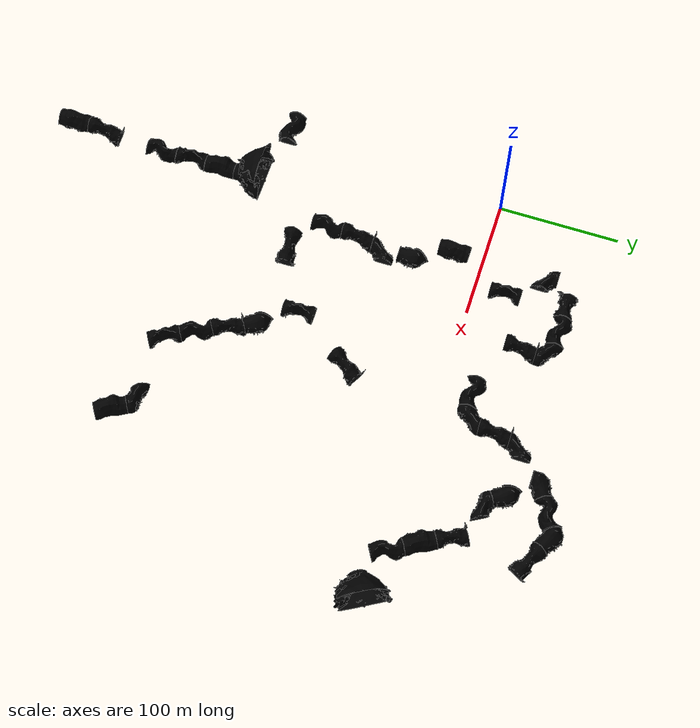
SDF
<sdf version="1.6">
 <world name="cave_qual">
  <physics name="1ms" type="ode">
   <max_step_size>0.001</max_step_size>
   <real_time_factor>1.0</real_time_factor>
  </physics>
  <scene>
   <ambient>0.1 0.1 0.1 1.0</ambient>
   <background>0 0 0 1.0</background>
   <grid>false</grid>
   <origin_visual>false</origin_visual>
  </scene>
  <atmosphere type="adiabatic">
   <temperature>288</temperature>
   <temperature_gradient>0.3</temperature_gradient>
  </atmosphere>
  <plugin name="ros_interface_plugin" filename="librotors_gazebo_ros_interface_plugin.so"/>
  <include>
   <static>true</static>
   <name>tile_3</name>
   <pose>50 50 0 0 -0 -1.5708</pose>
   <uri>https://fuel.ignitionrobotics.org/1.0/OpenRobotics/models/Cave Corner 02 Type B</uri>
  </include>
  <include>
   <static>true</static>
   <name>tile_4</name>
   <pose>75 75 0 0 -0 1.5708</pose>
   <uri>https://fuel.ignitionrobotics.org/1.0/OpenRobotics/models/Cave Elevation Type B</uri>
  </include>
  <include>
   <static>true</static>
   <name>tile_6</name>
   <pose>75 25 0 0 -0 -3.14159</pose>
   <uri>https://fuel.ignitionrobotics.org/1.0/OpenRobotics/models/Cave Straight 02 Lights Type B</uri>
  </include>
  <include>
   <static>true</static>
   <name>tile_10</name>
   <pose>50 -200 30 0 -0 1.5708</pose>
   <uri>https://fuel.ignitionrobotics.org/1.0/OpenRobotics/models/Cave Cavern Split 02 Type B</uri>
  </include>
  <include>
   <static>true</static>
   <name>tile_12</name>
   <pose>100 75 10 0 -0 -1.5708</pose>
   <uri>https://fuel.ignitionrobotics.org/1.0/OpenRobotics/models/Cave Straight 03 Type B</uri>
  </include>
  <include>
   <static>true</static>
   <name>tile_14</name>
   <pose>200 25 20 0 0 -4e-06</pose>
   <uri>https://fuel.ignitionrobotics.org/1.0/OpenRobotics/models/Cave Corner 02 Type B</uri>
  </include>
  <include>
   <static>true</static>
   <name>tile_15</name>
   <pose>125 50 10 0 0 -4e-06</pose>
   <uri>https://fuel.ignitionrobotics.org/1.0/OpenRobotics/models/Cave Elevation Type B</uri>
  </include>
  <include>
   <static>true</static>
   <name>tile_23</name>
   <pose>181.25 -76.6747 10 0 0 -0.523594</pose>
   <uri>https://fuel.ignitionrobotics.org/1.0/OpenRobotics/models/Cave Elevation Lights Type B</uri>
  </include>
  <include>
   <static>true</static>
   <name>tile_27</name>
   <pose>75 -75 20 0 -0 -3.14159</pose>
   <uri>https://fuel.ignitionrobotics.org/1.0/OpenRobotics/models/Cave Corner 02 Lights Type B</uri>
  </include>
  <include>
   <static>true</static>
   <name>tile_28</name>
   <pose>75 -100 20 0 0 -4e-06</pose>
   <uri>https://fuel.ignitionrobotics.org/1.0/OpenRobotics/models/Cave Elevation Type B</uri>
  </include>
  <include>
   <static>true</static>
   <name>tile_29</name>
   <pose>75 -125 30 0 -0 -3.14159</pose>
   <uri>https://fuel.ignitionrobotics.org/1.0/OpenRobotics/models/Cave Straight 03 Type B</uri>
  </include>
  <include>
   <static>true</static>
   <name>tile_33</name>
   <pose>100 -150 20 0 -0 -1.5708</pose>
   <uri>https://fuel.ignitionrobotics.org/1.0/OpenRobotics/models/Cave Elevation Type B</uri>
  </include>
  <include>
   <static>true</static>
   <name>tile_35</name>
   <pose>150 -125 20 0 -0 -3.14159</pose>
   <uri>https://fuel.ignitionrobotics.org/1.0/OpenRobotics/models/Cave Straight 02 Type B</uri>
  </include>
  <include>
   <static>true</static>
   <name>tile_36</name>
   <pose>12.5 -175 55 0 -0 1.5708</pose>
   <uri>https://fuel.ignitionrobotics.org/1.0/OpenRobotics/models/Cave Straight 03 Type B</uri>
  </include>
  <include>
   <static>true</static>
   <name>tile_38</name>
   <pose>175 -150 20 0 -0 -3.14159</pose>
   <uri>https://fuel.ignitionrobotics.org/1.0/OpenRobotics/models/Cave Corner 30 D Type B</uri>
  </include>
  <include>
   <static>true</static>
   <name>tile_39</name>
   <pose>181.691 -172.824 20 0 -0 0.523596</pose>
   <uri>https://fuel.ignitionrobotics.org/1.0/OpenRobotics/models/Cave Elevation Type B</uri>
  </include>
  <include>
   <static>true</static>
   <name>tile_40</name>
   <pose>194.191 -194.475 30 0 -0 -2.618</pose>
   <uri>https://fuel.ignitionrobotics.org/1.0/OpenRobotics/models/Cave Straight 03 Type B</uri>
  </include>
  <include>
   <static>true</static>
   <name>tile_41</name>
   <pose>206.691 -216.126 30 0 -0 -2.61799</pose>
   <uri>https://fuel.ignitionrobotics.org/1.0/OpenRobotics/models/Cave Straight 02 Type B</uri>
  </include>
  <include>
   <static>true</static>
   <name>tile_43</name>
   <pose>262.493 -212.776 30 0 -0 2.0944</pose>
   <uri>https://fuel.ignitionrobotics.org/1.0/OpenRobotics/models/Cave Corner 02 Type B</uri>
  </include>
  <include>
   <static>true</static>
   <name>tile_45</name>
   <pose>274.993 -234.427 30 0 -0 0.523596</pose>
   <uri>https://fuel.ignitionrobotics.org/1.0/OpenRobotics/models/Cave Straight 04 Type B</uri>
  </include>
  <include>
   <static>true</static>
   <name>tile_46</name>
   <pose>50 -225 30 0 0 -4e-06</pose>
   <uri>https://fuel.ignitionrobotics.org/1.0/OpenRobotics/models/Cave Straight 04 Type B</uri>
  </include>
  <include>
   <static>true</static>
   <name>tile_47</name>
   <pose>50 -250 30 0 -0 -3.14159</pose>
   <uri>https://fuel.ignitionrobotics.org/1.0/OpenRobotics/models/Cave Straight 02 Type B</uri>
  </include>
  <include>
   <static>true</static>
   <name>tile_48</name>
   <pose>50 -350 40 0 -0 -3.14159</pose>
   <uri>https://fuel.ignitionrobotics.org/1.0/OpenRobotics/models/Cave Straight 04 Type B</uri>
  </include>
  <include>
   <static>true</static>
   <name>tile_50</name>
   <pose>50 -275 30 0 0 -4e-06</pose>
   <uri>https://fuel.ignitionrobotics.org/1.0/OpenRobotics/models/Cave Straight 03 Type B</uri>
  </include>
  <include>
   <static>true</static>
   <name>tile_51</name>
   <pose>50 -325 30 0 0 -4e-06</pose>
   <uri>https://fuel.ignitionrobotics.org/1.0/OpenRobotics/models/Cave Elevation Type B</uri>
  </include>
  <include>
   <static>true</static>
   <name>tile_53</name>
   <pose>175 25 20 0 -0 -1.5708</pose>
   <uri>https://fuel.ignitionrobotics.org/1.0/OpenRobotics/models/Cave Straight 03 Type B</uri>
  </include>
  <include>
   <static>true</static>
   <name>tile_54</name>
   <pose>200 75 10 0 -0 -3.14159</pose>
   <uri>https://fuel.ignitionrobotics.org/1.0/OpenRobotics/models/Cave Corner 02 Type B</uri>
  </include>
  <include>
   <static>true</static>
   <name>tile_55</name>
   <pose>125 75 10 0 -0 1.5708</pose>
   <uri>https://fuel.ignitionrobotics.org/1.0/OpenRobotics/models/Cave Corner 02 Type B</uri>
  </include>
  <include>
   <static>true</static>
   <name>tile_56</name>
   <pose>200 50 10 0 0 -4e-06</pose>
   <uri>https://fuel.ignitionrobotics.org/1.0/OpenRobotics/models/Cave Elevation Type B</uri>
  </include>
  <include>
   <static>true</static>
   <name>tile_58</name>
   <pose>225 100 10 0 0 -1.57079</pose>
   <uri>https://fuel.ignitionrobotics.org/1.0/OpenRobotics/models/Cave Corner 30 D Type B</uri>
  </include>
  <include>
   <static>true</static>
   <name>tile_59</name>
   <pose>248.325 106.25 9.99999 0 0 -1.04719</pose>
   <uri>https://fuel.ignitionrobotics.org/1.0/OpenRobotics/models/Cave Straight 03 Type B</uri>
  </include>
  <include>
   <static>true</static>
   <name>tile_60</name>
   <pose>269.976 118.75 9.99999 0 -0 -2.61799</pose>
   <uri>https://fuel.ignitionrobotics.org/1.0/OpenRobotics/models/Cave Corner 30 D Type B</uri>
  </include>
  <include>
   <static>true</static>
   <name>tile_61</name>
   <pose>287.051 101.675 0 0 -0 -2.0944</pose>
   <uri>https://fuel.ignitionrobotics.org/1.0/OpenRobotics/models/Cave Elevation Type B</uri>
  </include>
  <include>
   <static>true</static>
   <name>tile_62</name>
   <pose>250 75 10 0 -0 -3.14159</pose>
   <uri>https://fuel.ignitionrobotics.org/1.0/OpenRobotics/models/Cave Corner 30 D Type B</uri>
  </include>
  <include>
   <static>true</static>
   <name>tile_64</name>
   <pose>256.25 51.6747 10 0 0 -1.04719</pose>
   <uri>https://fuel.ignitionrobotics.org/1.0/OpenRobotics/models/Cave Corner 02 Type B</uri>
  </include>
  <include>
   <static>true</static>
   <name>tile_65</name>
   <pose>290.401 42.5241 10 0 -0 0.523596</pose>
   <uri>https://fuel.ignitionrobotics.org/1.0/OpenRobotics/models/Cave Elevation Type B</uri>
  </include>
  <include>
   <static>true</static>
   <name>tile_66</name>
   <pose>315.401 -0.777207 20 0 -0 -2.618</pose>
   <uri>https://fuel.ignitionrobotics.org/1.0/OpenRobotics/models/Cave Straight 03 Type B</uri>
  </include>
  <include>
   <static>true</static>
   <name>tile_67</name>
   <pose>302.901 20.8734 20 0 -0 0.523596</pose>
   <uri>https://fuel.ignitionrobotics.org/1.0/OpenRobotics/models/Cave Straight 04 Type B</uri>
  </include>
  <include>
   <static>true</static>
   <name>tile_70</name>
   <pose>349.551 -9.92784 20 0 -0 0.523599</pose>
   <uri>https://fuel.ignitionrobotics.org/1.0/OpenRobotics/models/Cave Cavern Split 02 Type B</uri>
  </include>
  <include>
   <static>true</static>
   <name>tile_72</name>
   <pose>50 -25 0 0 -0 -3.14159</pose>
   <uri>https://fuel.ignitionrobotics.org/1.0/OpenRobotics/models/Cave Straight 04 Lights Type B</uri>
  </include>
  <include>
   <static>true</static>
   <name>tile_75</name>
   <pose>73.3253 -56.25 4e-06 0 -0 2.618</pose>
   <uri>https://fuel.ignitionrobotics.org/1.0/OpenRobotics/models/Cave Corner 30 D Lights Type B</uri>
  </include>
  <wind><linear_velocity>0.000000 0.000000 0.000000</linear_velocity></wind>
  <plugin name="ignition::gazebo::systems::WindEffects" filename="libignition-gazebo-wind-effects-system.so">
   <horizontal>
    <magnitude>
     <time_for_rise>10</time_for_rise>
     <sin><amplitude_percent>0.05</amplitude_percent><period>60</period></sin>
     <noise type="gaussian"><mean>0</mean><stddev>0.0002</stddev></noise>
    </magnitude>
    <direction>
     <time_for_rise>30</time_for_rise>
     <sin><amplitude>5</amplitude><period>20</period></sin>
     <noise type="gaussian"><mean>0</mean><stddev>0.03</stddev></noise>
    </direction>
   </horizontal>
   <vertical><noise type="gaussian"><mean>0</mean><stddev>0.03</stddev></noise></vertical>
  </plugin>
 </world>
</sdf>

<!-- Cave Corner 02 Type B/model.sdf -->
<sdf version="1.6">
  <model name="Cave Corner 02 Type B">
    <static>true</static>
    <link name="base_link">
      <collision name="collision">
        <pose>0 0 0 0 0 0</pose>
        <geometry>
          <mesh>
            <uri>model://cave_corner_02/meshes/cavecorner02.dae</uri>
            <scale>1.005 1.005 1.0</scale>
          </mesh>
        </geometry>
      </collision>
      <visual name="CaveWall_visual">
        <geometry>
          <mesh>
            <uri>model://cave_corner_02/meshes/cavecorner02.dae</uri>
            <submesh>
              <name>CaveWall</name>
              <center>false</center>
            </submesh>
            <scale>1.005 1.005 1.0</scale>
          </mesh>
        </geometry>
        <material>
          <diffuse>0 0 0 1</diffuse>
          <specular>0 0 0 1</specular>
          <pbr>
            <metal>
              <albedo_map>model://cave_corner_02/materials/textures/CaveWall_Albedo.png</albedo_map>
              <normal_map>model://cave_corner_02/materials/textures/CaveWall_Normal.png</normal_map>
              <roughness_map>model://cave_corner_02/materials/textures/CaveWall_Roughness.png</roughness_map>
            </metal>
          </pbr>

          <script>
            <uri>model://cave_corner_02/materials/scripts/</uri>
            <uri>model://cave_corner_02/materials/textures/</uri>
            <name>CaveTile/CaveWall_Diffuse</name>
          </script>
        </material>
      </visual>
      <visual name="StriatedRock_visual">
        <geometry>
          <mesh>
            <uri>model://cave_corner_02/meshes/cavecorner02.dae</uri>
            <submesh>
              <name>StriatedRock</name>
              <center>false</center>
            </submesh>
            <scale>1.005 1.005 1.0</scale>
          </mesh>
        </geometry>
        <material>
          <diffuse>0 0 0 1</diffuse>
          <specular>0 0 0 1</specular>
          <pbr>
            <metal>
              <albedo_map>model://cave_corner_02/materials/textures/StriatedRock_Albedo.png</albedo_map>
              <normal_map>model://cave_corner_02/materials/textures/StriatedRock_Normal.png</normal_map>
              <roughness_map>model://cave_corner_02/materials/textures/StriatedRock_Roughness.png</roughness_map>
            </metal>
          </pbr>

          <script>
            <uri>model://cave_corner_02/materials/scripts/</uri>
            <uri>model://cave_corner_02/materials/textures/</uri>
            <name>CaveTile/StriatedRock_Diffuse</name>
          </script>
        </material>
      </visual>
      <visual name="RockPile_visual">
        <geometry>
          <mesh>
            <uri>model://cave_corner_02/meshes/cavecorner02.dae</uri>
            <submesh>
              <name>RockPile</name>
              <center>false</center>
            </submesh>
            <scale>1.005 1.005 1.0</scale>
          </mesh>
        </geometry>
        <material>
          <diffuse>0 0 0 1</diffuse>
          <specular>0 0 0 1</specular>
          <pbr>
            <metal>
              <albedo_map>model://cave_corner_02/materials/textures/RockPile_Albedo.png</albedo_map>
              <normal_map>model://cave_corner_02/materials/textures/RockPile_Normal.png</normal_map>
              <roughness_map>model://cave_corner_02/materials/textures/RockPile_Roughness.png</roughness_map>
            </metal>
          </pbr>

          <script>
            <uri>model://cave_corner_02/materials/scripts/</uri>
            <uri>model://cave_corner_02/materials/textures/</uri>
            <name>CaveTile/RockPile_Diffuse</name>
          </script>
        </material>
      </visual>
    </link>
  </model>
</sdf>

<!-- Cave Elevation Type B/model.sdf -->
<sdf version="1.6">
  <model name="Cave Elevation Type B">
    <static>true</static>
    <link name="base_link">
      <collision name="collision">
        <pose>0 0 0 0 0 0</pose>
        <geometry>
          <mesh>
            <uri>model://Cave Elevation Type B/meshes/caveelevation.dae</uri>
            <scale>1.0 1.0 1.0</scale>
          </mesh>
        </geometry>
      </collision>
      <visual name="CaveWall_visual">
        <geometry>
          <mesh>
            <uri>model://Cave Elevation Type B/meshes/caveelevation.dae</uri>
            <submesh>
              <name>CaveWall</name>
              <center>false</center>
            </submesh>
          </mesh>
        </geometry>
        <material>
          <diffuse>0 0 0 1</diffuse>
          <specular>0 0 0 1</specular>
          <pbr>
            <metal>
              <albedo_map>model://Cave Elevation Type B/materials/textures/CaveWall_Albedo.png</albedo_map>
              <normal_map>model://Cave Elevation Type B/materials/textures/CaveWall_Normal.png</normal_map>
              <roughness_map>model://Cave Elevation Type B/materials/textures/CaveWall_Roughness.png</roughness_map>
            </metal>
          </pbr>

          <script>
            <uri>model://Cave Elevation Type B/materials/scripts/</uri>
            <uri>model://Cave Elevation Type B/materials/textures/</uri>
            <name>CaveTile/CaveWall_Diffuse</name>
          </script>
        </material>
      </visual>
      <visual name="RockPile_visual">
        <geometry>
          <mesh>
            <uri>model://Cave Elevation Type B/meshes/caveelevation.dae</uri>
            <submesh>
              <name>RockPile</name>
              <center>false</center>
            </submesh>
          </mesh>
        </geometry>
        <material>
          <diffuse>0 0 0 1</diffuse>
          <specular>0 0 0 1</specular>
          <pbr>
            <metal>
              <albedo_map>model://Cave Elevation Type B/materials/textures/RockPile_Albedo.png</albedo_map>
              <normal_map>model://Cave Elevation Type B/materials/textures/RockPile_Normal.png</normal_map>
              <roughness_map>model://Cave Elevation Type B/materials/textures/RockPile_Roughness.png</roughness_map>
            </metal>
          </pbr>

          <script>
            <uri>model://Cave Elevation Type B/materials/scripts/</uri>
            <uri>model://Cave Elevation Type B/materials/textures/</uri>
            <name>CaveTile/RockPile_Diffuse</name>
          </script>
        </material>
      </visual>
      <visual name="StriatedRock_visual">
        <geometry>
          <mesh>
            <uri>model://Cave Elevation Type B/meshes/caveelevation.dae</uri>
            <submesh>
              <name>StriatedRock</name>
              <center>false</center>
            </submesh>
          </mesh>
        </geometry>
        <material>
          <diffuse>0 0 0 1</diffuse>
          <specular>0 0 0 1</specular>
          <pbr>
            <metal>
              <albedo_map>model://Cave Elevation Type B/materials/textures/StriatedRock_Albedo.png</albedo_map>
              <normal_map>model://Cave Elevation Type B/materials/textures/StriatedRock_Normal.png</normal_map>
              <roughness_map>model://Cave Elevation Type B/materials/textures/StriatedRock_Roughness.png</roughness_map>
            </metal>
          </pbr>

          <script>
            <uri>model://Cave Elevation Type B/materials/scripts/</uri>
            <uri>model://Cave Elevation Type B/materials/textures/</uri>
            <name>CaveTile/StriatedRock_Diffuse</name>
          </script>
        </material>
      </visual>
    </link>

    <plugin filename="libignition-gazebo-performer-detector-system.so" name="ignition::gazebo::systems::PerformerDetector">
      <topic>/subt_performer_detector</topic>
      <pose>0 0 10 0 0 0</pose>
      <geometry>
        <box>
          <size>20 30 20</size>
        </box>
      </geometry>
      <header_data>
        <key>type</key>
        <value>elevation</value>
      </header_data>
    </plugin>
  </model>
</sdf>

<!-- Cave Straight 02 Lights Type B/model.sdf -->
<sdf version="1.6">
  <model name="Cave Straight 02 Lights Type B">
    <include>
      <name>cave_straight_02</name>
      <uri>model://Cave Straight 02 Type B</uri>
    </include>
    <static>true</static>
    <link name="lights">
      <light name="spot_light1" type="spot">
        <pose>0 5.0 3.5 0 0 0</pose>
        <diffuse>0 0 0 1</diffuse>
        <specular>0 0 0 1</specular>
        <attenuation>
          <range>20</range>
          <linear>0.2</linear>
          <constant>0.5</constant>
          <quadratic>0.02</quadratic>
        </attenuation>
        <spot>
          <inner_angle>2.0</inner_angle>
          <outer_angle>3.1</outer_angle>
          <falloff>1.0</falloff>
        </spot>
        <cast_shadows>false</cast_shadows>
      </light>

      <light name="spot_light2" type="spot">
        <pose>0 -5.5 4.5 0 0 0</pose>
        <diffuse>0 0 0 1</diffuse>
        <specular>0 0 0 1</specular>
        <attenuation>
          <range>20</range>
          <linear>0.2</linear>
          <constant>0.5</constant>
          <quadratic>0.02</quadratic>
        </attenuation>
        <spot>
          <inner_angle>2.0</inner_angle>
          <outer_angle>3.1</outer_angle>
          <falloff>1.0</falloff>
        </spot>
        <cast_shadows>false</cast_shadows>
      </light>
    </link>
  </model>
</sdf>

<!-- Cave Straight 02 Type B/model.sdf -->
<sdf version="1.6">
  <model name="Cave Straight 02 Type B">
    <static>true</static>
    <link name="base_link">
      <collision name="collision">
        <pose>0 0 0 0 0 0</pose>
        <geometry>
          <mesh>
            <uri>model://Cave Straight 02 Type B/meshes/cavestraight02.dae</uri>
            <scale>1.005 1.005 1.0</scale>
          </mesh>
        </geometry>
      </collision>
      <visual name="StriatedRock_visual">
        <geometry>
          <mesh>
            <uri>model://Cave Straight 02 Type B/meshes/cavestraight02.dae</uri>
            <scale>1.005 1.005 1.0</scale>
            <submesh>
              <name>StriatedRock</name>
              <center>false</center>
            </submesh>
          </mesh>
        </geometry>
        <material>
          <diffuse>0 0 0 1</diffuse>
          <specular>0 0 0 1</specular>
          <pbr>
            <metal>
              <albedo_map>model://Cave Straight 02 Type B/materials/textures/StriatedRock_Albedo.png</albedo_map>
              <normal_map>model://Cave Straight 02 Type B/materials/textures/StriatedRock_Normal.png</normal_map>
              <roughness_map>model://Cave Straight 02 Type B/materials/textures/StriatedRock_Roughness.png</roughness_map>
            </metal>
          </pbr>

          <script>
            <uri>model://Cave Straight 02 Type B/materials/scripts/</uri>
            <uri>model://Cave Straight 02 Type B/materials/textures/</uri>
            <name>CaveTile/StriatedRock_Diffuse</name>
          </script>
        </material>
      </visual>
      <visual name="RockPile_visual">
        <geometry>
          <mesh>
            <uri>model://Cave Straight 02 Type B/meshes/cavestraight02.dae</uri>
            <scale>1.005 1.005 1.0</scale>
            <submesh>
              <name>RockPile</name>
              <center>false</center>
            </submesh>
          </mesh>
        </geometry>
        <material>
          <diffuse>0 0 0 1</diffuse>
          <specular>0 0 0 1</specular>
          <pbr>
            <metal>
              <albedo_map>model://Cave Straight 02 Type B/materials/textures/RockPile_Albedo.png</albedo_map>
              <normal_map>model://Cave Straight 02 Type B/materials/textures/RockPile_Normal.png</normal_map>
              <roughness_map>model://Cave Straight 02 Type B/materials/textures/RockPile_Roughness.png</roughness_map>
            </metal>
          </pbr>

          <script>
            <uri>model://Cave Straight 02 Type B/materials/scripts/</uri>
            <uri>model://Cave Straight 02 Type B/materials/textures/</uri>
            <name>CaveTile/RockPile_Diffuse</name>
          </script>
        </material>
      </visual>
      <visual name="CaveWall_visual">
        <geometry>
          <mesh>
            <uri>model://Cave Straight 02 Type B/meshes/cavestraight02.dae</uri>
            <scale>1.005 1.005 1.0</scale>
            <submesh>
              <name>CaveWall</name>
              <center>false</center>
            </submesh>
          </mesh>
        </geometry>
        <material>
          <diffuse>0 0 0 1</diffuse>
          <specular>0 0 0 1</specular>
          <pbr>
            <metal>
              <albedo_map>model://Cave Straight 02 Type B/materials/textures/CaveWall_Albedo.png</albedo_map>
              <normal_map>model://Cave Straight 02 Type B/materials/textures/CaveWall_Normal.png</normal_map>
              <roughness_map>model://Cave Straight 02 Type B/materials/textures/CaveWall_Roughness.png</roughness_map>
            </metal>
          </pbr>

          <script>
            <uri>model://Cave Straight 02 Type B/materials/scripts/</uri>
            <uri>model://Cave Straight 02 Type B/materials/textures/</uri>
            <name>CaveTile/CaveWall_Diffuse</name>
          </script>
        </material>
      </visual>
    </link>
  </model>
</sdf>

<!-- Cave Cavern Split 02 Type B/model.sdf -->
<sdf version="1.6">
  <model name="Cave Cavern Split 02 Type B">
    <static>true</static>
    <link name="base_link">
      <collision name="collision">
        <pose>0 0 0 0 0 0</pose>
        <geometry>
          <mesh>
            <uri>model://cave_Cave Cavern Split 02 Type B/meshes/cavernsplit02.dae</uri>
            <scale>1.0 1.0 1.0</scale>
          </mesh>
        </geometry>
      </collision>
      <visual name="StriatedRock_visual">
        <geometry>
          <mesh>
            <uri>model://cave_Cave Cavern Split 02 Type B/meshes/cavernsplit02.dae</uri>
            <submesh>
              <name>StriatedRock</name>
              <center>false</center>
            </submesh>
          </mesh>
        </geometry>
        <material>
          <diffuse>0 0 0 1</diffuse>
          <specular>0 0 0 1</specular>
          <pbr>
            <metal>
              <albedo_map>model://cave_Cave Cavern Split 02 Type B/materials/textures/StriatedRock_Albedo.png</albedo_map>
              <normal_map>model://cave_Cave Cavern Split 02 Type B/materials/textures/StriatedRock_Normal.png</normal_map>
              <roughness_map>model://cave_Cave Cavern Split 02 Type B/materials/textures/StriatedRock_Roughness.png</roughness_map>
            </metal>
          </pbr>

          <script>
            <uri>model://cave_Cave Cavern Split 02 Type B/materials/scripts/</uri>
            <uri>model://cave_Cave Cavern Split 02 Type B/materials/textures/</uri>
            <name>CaveTile/StriatedRock_Diffuse</name>
          </script>
        </material>
      </visual>
      <visual name="RockPile_visual">
        <geometry>
          <mesh>
            <uri>model://cave_Cave Cavern Split 02 Type B/meshes/cavernsplit02.dae</uri>
            <submesh>
              <name>RockPile</name>
              <center>false</center>
            </submesh>
          </mesh>
        </geometry>
        <material>
          <diffuse>0 0 0 1</diffuse>
          <specular>0 0 0 1</specular>
          <pbr>
            <metal>
              <albedo_map>model://cave_Cave Cavern Split 02 Type B/materials/textures/RockPile_Albedo.png</albedo_map>
              <normal_map>model://cave_Cave Cavern Split 02 Type B/materials/textures/RockPile_Normal.png</normal_map>
              <roughness_map>model://cave_Cave Cavern Split 02 Type B/materials/textures/RockPile_Roughness.png</roughness_map>
            </metal>
          </pbr>

          <script>
            <uri>model://cave_Cave Cavern Split 02 Type B/materials/scripts/</uri>
            <uri>model://cave_Cave Cavern Split 02 Type B/materials/textures/</uri>
            <name>CaveTile/RockPile_Diffuse</name>
          </script>
        </material>
      </visual>
      <visual name="CaveWall_visual">
        <geometry>
          <mesh>
            <uri>model://cave_Cave Cavern Split 02 Type B/meshes/cavernsplit02.dae</uri>
            <submesh>
              <name>CaveWall_ncl1_1</name>
              <center>false</center>
            </submesh>
          </mesh>
        </geometry>
        <material>
          <diffuse>0 0 0 1</diffuse>
          <specular>0 0 0 1</specular>
          <pbr>
            <metal>
              <albedo_map>model://cave_Cave Cavern Split 02 Type B/materials/textures/CaveWall_Albedo.png</albedo_map>
              <normal_map>model://cave_Cave Cavern Split 02 Type B/materials/textures/CaveWall_Normal.png</normal_map>
              <roughness_map>model://cave_Cave Cavern Split 02 Type B/materials/textures/CaveWall_Roughness.png</roughness_map>
            </metal>
          </pbr>

          <script>
            <uri>model://cave_Cave Cavern Split 02 Type B/materials/scripts/</uri>
            <uri>model://cave_Cave Cavern Split 02 Type B/materials/textures/</uri>
            <name>CaveTile/CaveWall_Diffuse</name>
          </script>
        </material>
      </visual>
    </link>
  </model>
</sdf>

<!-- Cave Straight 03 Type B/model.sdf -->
<sdf version="1.6">
  <model name="Cave Straight 03 Type B">
    <static>true</static>
    <link name="base_link">
      <collision name="collision">
        <pose>0 0 0 0 0 0</pose>
        <geometry>
          <mesh>
            <uri>model://Cave Straight 03 Type B/meshes/cavestraight03.dae</uri>
            <scale>1.005 1.005 1.0</scale>
          </mesh>
        </geometry>
      </collision>
      <visual name="StriatedRock_visual">
        <geometry>
          <mesh>
            <uri>model://Cave Straight 03 Type B/meshes/cavestraight03.dae</uri>
            <submesh>
              <name>StriatedRock</name>
              <center>false</center>
            </submesh>
            <scale>1.005 1.005 1.0</scale>
          </mesh>
        </geometry>
        <material>
          <diffuse>0 0 0 1</diffuse>
          <specular>0 0 0 1</specular>
          <pbr>
            <metal>
              <albedo_map>model://Cave Straight 03 Type B/materials/textures/StriatedRock_Albedo.png</albedo_map>
              <normal_map>model://Cave Straight 03 Type B/materials/textures/StriatedRock_Normal.png</normal_map>
              <roughness_map>model://Cave Straight 03 Type B/materials/textures/StriatedRock_Roughness.png</roughness_map>
            </metal>
          </pbr>

          <script>
            <uri>model://Cave Straight 03 Type B/materials/scripts/</uri>
            <uri>model://Cave Straight 03 Type B/materials/textures/</uri>
            <name>CaveTile/StriatedRock_Diffuse</name>
          </script>
        </material>
      </visual>
      <visual name="RockPile_visual">
        <geometry>
          <mesh>
            <uri>model://Cave Straight 03 Type B/meshes/cavestraight03.dae</uri>
            <submesh>
              <name>RockPile</name>
              <center>false</center>
            </submesh>
            <scale>1.005 1.005 1.0</scale>
          </mesh>
        </geometry>
        <material>
          <diffuse>0 0 0 1</diffuse>
          <specular>0 0 0 1</specular>
          <pbr>
            <metal>
              <albedo_map>model://Cave Straight 03 Type B/materials/textures/RockPile_Albedo.png</albedo_map>
              <normal_map>model://Cave Straight 03 Type B/materials/textures/RockPile_Normal.png</normal_map>
              <roughness_map>model://Cave Straight 03 Type B/materials/textures/RockPile_Roughness.png</roughness_map>
            </metal>
          </pbr>

          <script>
            <uri>model://Cave Straight 03 Type B/materials/scripts/</uri>
            <uri>model://Cave Straight 03 Type B/materials/textures/</uri>
            <name>CaveTile/RockPile_Diffuse</name>
          </script>
        </material>
      </visual>
      <visual name="CaveWall_visual">
        <geometry>
          <mesh>
            <uri>model://Cave Straight 03 Type B/meshes/cavestraight03.dae</uri>
            <submesh>
              <name>CaveWall</name>
              <center>false</center>
            </submesh>
            <scale>1.005 1.005 1.0</scale>
          </mesh>
        </geometry>
        <material>
          <diffuse>0 0 0 1</diffuse>
          <specular>0 0 0 1</specular>
          <pbr>
            <metal>
              <albedo_map>model://Cave Straight 03 Type B/materials/textures/CaveWall_Albedo.png</albedo_map>
              <normal_map>model://Cave Straight 03 Type B/materials/textures/CaveWall_Normal.png</normal_map>
              <roughness_map>model://Cave Straight 03 Type B/materials/textures/CaveWall_Roughness.png</roughness_map>
            </metal>
          </pbr>

          <script>
            <uri>model://Cave Straight 03 Type B/materials/scripts/</uri>
            <uri>model://Cave Straight 03 Type B/materials/textures/</uri>
            <name>CaveTile/CaveWall_Diffuse</name>
          </script>
        </material>
      </visual>
    </link>
  </model>
</sdf>

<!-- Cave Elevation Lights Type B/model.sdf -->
<sdf version="1.6">
  <model name="Cave Elevation Lights Type B">
    <static>true</static>
    <include>
      <name>cave_elevation</name>
      <uri>model://Cave Elevation Type B</uri>
    </include>

    <link name="light1">
      <light name="spot_light1" type="spot">
        <pose>0 -8 17.5 0 0 0</pose>
        <diffuse>0 0 0 1</diffuse>
        <specular>0 0 0 1</specular>
        <attenuation>
          <range>20</range>
          <linear>0.2</linear>
          <constant>1.0</constant>
          <quadratic>0.01</quadratic>
        </attenuation>
        <spot>
          <inner_angle>2.0</inner_angle>
          <outer_angle>3.1</outer_angle>
          <falloff>1.2</falloff>
        </spot>
        <cast_shadows>false</cast_shadows>
      </light>

      <light name="spot_light2" type="spot">
        <pose>0 2 13.5 0 0 0</pose>
        <diffuse>0 0 0 1</diffuse>
        <specular>0 0 0 1</specular>
        <attenuation>
          <range>20</range>
          <linear>0.2</linear>
          <constant>1.0</constant>
          <quadratic>0.01</quadratic>
        </attenuation>
        <spot>
          <inner_angle>2.0</inner_angle>
          <outer_angle>3.1</outer_angle>
          <falloff>1.2</falloff>
        </spot>
        <cast_shadows>false</cast_shadows>
      </light>

      <light name="spot_light3" type="spot">
        <pose>0 12 9 0 0 0</pose>
        <diffuse>0 0 0 1</diffuse>
        <specular>0 0 0 1</specular>
        <attenuation>
          <range>20</range>
          <linear>0.2</linear>
          <constant>1.0</constant>
          <quadratic>0.01</quadratic>
        </attenuation>
        <spot>
          <inner_angle>2.0</inner_angle>
          <outer_angle>3.1</outer_angle>
          <falloff>1.2</falloff>
        </spot>
        <cast_shadows>false</cast_shadows>
      </light>
    </link>
  </model>
</sdf>

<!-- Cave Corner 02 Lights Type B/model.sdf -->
<sdf version="1.6">
  <model name="Cave Corner 02 Lights Type B">
    <include>
      <name>cave_corner_02</name>
      <uri>model://Cave Corner 02 Type B</uri>
    </include>
    <static>true</static>
    <link name="lights">
      <light name="spot_light1" type="spot">
        <pose>-2 6.0 3.5 0 0 0</pose>
        <diffuse>0 0 0 1</diffuse>
        <specular>0 0 0 1</specular>
        <attenuation>
          <range>20</range>
          <linear>0.2</linear>
          <constant>0.5</constant>
          <quadratic>0.02</quadratic>
        </attenuation>
        <spot>
          <inner_angle>2.0</inner_angle>
          <outer_angle>3.1</outer_angle>
          <falloff>1.0</falloff>
        </spot>
        <cast_shadows>false</cast_shadows>
      </light>

      <light name="spot_light2" type="spot">
        <pose>-6.5 -.25 4.5 0 0 0</pose>
        <diffuse>0 0 0 1</diffuse>
        <specular>0 0 0 1</specular>
        <attenuation>
          <range>20</range>
          <linear>0.2</linear>
          <constant>0.5</constant>
          <quadratic>0.02</quadratic>
        </attenuation>
        <spot>
          <inner_angle>2.0</inner_angle>
          <outer_angle>3.1</outer_angle>
          <falloff>1.0</falloff>
        </spot>
        <cast_shadows>false</cast_shadows>
      </light>
    </link>
  </model>
</sdf>

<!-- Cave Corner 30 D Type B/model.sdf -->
<sdf version="1.6">
  <model name="Cave Corner 30 D Type B">
    <static>true</static>
    <link name="base_link">
      <collision name="collision">
        <pose>0 0 0 0 0 0</pose>
        <geometry>
          <mesh>
            <uri>meshes/corner30deg.dae</uri>
            <scale>1.0 1.0 1.0</scale>
          </mesh>
        </geometry>
      </collision>
      <visual name="CaveWall_visual">
        <geometry>
          <mesh>
            <submesh>
              <name>CaveWall</name>
              <center>false</center>
            </submesh>
            <uri>meshes/corner30deg.dae</uri>
            <scale>1.0 1.0 1.0</scale>
          </mesh>
        </geometry>
        <material>
          <diffuse>0 0 0 1</diffuse>
          <specular>0 0 0 1</specular>
          <pbr>
            <metal>
              <albedo_map>model://Cave Corner 30 D Type B/materials/textures/CaveWall_Albedo.png</albedo_map>
              <normal_map>model://Cave Corner 30 D Type B/materials/textures/CaveWall_Normal.png</normal_map>
              <roughness_map>model://Cave Corner 30 D Type B/materials/textures/CaveWall_Roughness.png</roughness_map>
            </metal>
          </pbr>

          <script>
            <uri>materials/scripts/</uri>
            <uri>materials/textures/</uri>
            <name>CaveTile/CaveWall_Diffuse</name>
          </script>
        </material>
      </visual>
      <visual name="StriatedRock_visual">
        <geometry>
          <mesh>
            <uri>meshes/corner30deg.dae</uri>
            <submesh>
              <name>StriatedRock</name>
              <center>false</center>
            </submesh>
            <scale>1.0 1.0 1.0</scale>
          </mesh>
        </geometry>
        <material>
          <diffuse>0 0 0 1</diffuse>
          <specular>0 0 0 1</specular>
          <pbr>
            <metal>
              <albedo_map>model://Cave Corner 30 D Type B/materials/textures/StriatedRock_Albedo.png</albedo_map>
              <normal_map>model://Cave Corner 30 D Type B/materials/textures/StriatedRock_Normal.png</normal_map>
              <roughness_map>model://Cave Corner 30 D Type B/materials/textures/StriatedRock_Roughness.png</roughness_map>
            </metal>
          </pbr>

          <script>
            <uri>materials/scripts/</uri>
            <uri>materials/textures/</uri>
            <name>CaveTile/StriatedRock_Diffuse</name>
          </script>
        </material>
      </visual>
      <visual name="RockPile_visual">
        <geometry>
          <mesh>
            <uri>meshes/corner30deg.dae</uri>
            <submesh>
              <name>RockPile</name>
              <center>false</center>
            </submesh>
            <scale>1.0 1.0 1.0</scale>
          </mesh>
        </geometry>
        <material>
          <diffuse>0 0 0 1</diffuse>
          <specular>0 0 0 1</specular>
          <pbr>
            <metal>
              <albedo_map>model://Cave Corner 30 D Type B/materials/textures/RockPile_Albedo.png</albedo_map>
              <normal_map>model://Cave Corner 30 D Type B/materials/textures/RockPile_Normal.png</normal_map>
              <roughness_map>model://Cave Corner 30 D Type B/materials/textures/RockPile_Roughness.png</roughness_map>
            </metal>
          </pbr>

          <script>
            <uri>materials/scripts/</uri>
            <uri>materials/textures/</uri>
            <name>CaveTile/RockPile_Diffuse</name>
          </script>
        </material>
      </visual>

    </link>
  </model>
</sdf>

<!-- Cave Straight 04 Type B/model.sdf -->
<sdf version="1.6">
  <model name="Cave Straight 04 Type B">
    <static>true</static>
    <link name="base_link">
      <collision name="collision">
        <pose>0 0 0 0 0 0</pose>
        <geometry>
          <mesh>
            <uri>model://Cave Straight 04 Type B/meshes/cavestraight04.dae</uri>
            <scale>1.0 1.0 1.0</scale>
          </mesh>
        </geometry>
      </collision>
      <visual name="StriatedRock_visual">
        <geometry>
          <mesh>
            <uri>model://Cave Straight 04 Type B/meshes/cavestraight04.dae</uri>
            <submesh>
              <name>StriatedRock</name>
              <center>false</center>
            </submesh>
          </mesh>
        </geometry>
        <material>
          <diffuse>0 0 0 1</diffuse>
          <specular>0 0 0 1</specular>
          <pbr>
            <metal>
              <albedo_map>model://Cave Straight 04 Type B/materials/textures/StriatedRock_Albedo.png</albedo_map>
              <normal_map>model://Cave Straight 04 Type B/materials/textures/StriatedRock_Normal.png</normal_map>
              <roughness_map>model://Cave Straight 04 Type B/materials/textures/StriatedRock_Roughness.png</roughness_map>
            </metal>
          </pbr>

          <script>
            <uri>model://Cave Straight 04 Type B/materials/scripts/</uri>
            <uri>model://Cave Straight 04 Type B/materials/textures/</uri>
            <name>CaveTile/StriatedRock_Diffuse</name>
          </script>
        </material>
      </visual>
      <visual name="RockPile_visual">
        <geometry>
          <mesh>
            <uri>model://Cave Straight 04 Type B/meshes/cavestraight04.dae</uri>
            <submesh>
              <name>RockPile</name>
              <center>false</center>
            </submesh>
          </mesh>
        </geometry>
        <material>
          <diffuse>0 0 0 1</diffuse>
          <specular>0 0 0 1</specular>
          <pbr>
            <metal>
              <albedo_map>model://Cave Straight 04 Type B/materials/textures/RockPile_Albedo.png</albedo_map>
              <normal_map>model://Cave Straight 04 Type B/materials/textures/RockPile_Normal.png</normal_map>
              <roughness_map>model://Cave Straight 04 Type B/materials/textures/RockPile_Roughness.png</roughness_map>
            </metal>
          </pbr>

          <script>
            <uri>model://Cave Straight 04 Type B/materials/scripts/</uri>
            <uri>model://Cave Straight 04 Type B/materials/textures/</uri>
            <name>CaveTile/RockPile_Diffuse</name>
          </script>
        </material>
      </visual>
      <visual name="CaveWall_visual">
        <geometry>
          <mesh>
            <uri>model://Cave Straight 04 Type B/meshes/cavestraight04.dae</uri>
            <submesh>
              <name>CaveWall</name>
              <center>false</center>
            </submesh>
          </mesh>
        </geometry>
        <material>
          <diffuse>0 0 0 1</diffuse>
          <specular>0 0 0 1</specular>
          <pbr>
            <metal>
              <albedo_map>model://Cave Straight 04 Type B/materials/textures/CaveWall_Albedo.png</albedo_map>
              <normal_map>model://Cave Straight 04 Type B/materials/textures/CaveWall_Normal.png</normal_map>
              <roughness_map>model://Cave Straight 04 Type B/materials/textures/CaveWall_Roughness.png</roughness_map>
            </metal>
          </pbr>

          <script>
            <uri>model://Cave Straight 04 Type B/materials/scripts/</uri>
            <uri>model://Cave Straight 04 Type B/materials/textures/</uri>
            <name>CaveTile/CaveWall_Diffuse</name>
          </script>
        </material>
      </visual>
    </link>
  </model>
</sdf>

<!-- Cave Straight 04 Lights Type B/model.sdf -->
<sdf version="1.6">
  <model name="Cave Straight 04 Lights Type B">
    <include>
      <name>cave_straight_04</name>
      <uri>model://Cave Straight 04 Type B</uri>
    </include>
    <static>true</static>
    <link name="lights">
      <light name="spot_light1" type="spot">
        <pose>0 8 8.0 0 0 0</pose>
        <diffuse>0 0 0 1</diffuse>
        <specular>0 0 0 1</specular>
        <attenuation>
          <range>20</range>
          <linear>0.2</linear>
          <constant>0.3</constant>
          <quadratic>0.01</quadratic>
        </attenuation>
        <spot>
          <inner_angle>2.0</inner_angle>
          <outer_angle>3.1</outer_angle>
          <falloff>0.6</falloff>
        </spot>
        <cast_shadows>false</cast_shadows>
      </light>

      <light name="spot_light2" type="spot">
        <pose>0 -6.0 4.5 0 0 0</pose>
        <diffuse>0 0 0 1</diffuse>
        <specular>0 0 0 1</specular>
        <attenuation>
          <range>20</range>
          <linear>0.2</linear>
          <constant>0.3</constant>
          <quadratic>0.01</quadratic>
        </attenuation>
        <spot>
          <inner_angle>2.0</inner_angle>
          <outer_angle>3.1</outer_angle>
          <falloff>0.6</falloff>
        </spot>
        <cast_shadows>false</cast_shadows>
      </light>
    </link>
  </model>
</sdf>

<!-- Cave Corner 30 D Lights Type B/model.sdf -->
<sdf version="1.6">
  <model name="Cave Corner 30 D Lights Type B">
    <include>
      <name>cave_corner_30_d</name>
      <uri>model://Cave Corner 30 D Type B</uri>
    </include>
    <static>true</static>
    <link name="lights">
      <light name="spot_light1" type="spot">
        <pose>1.75 6.0 3.5 0 0 0</pose>
        <diffuse>0 0 0 1</diffuse>
        <specular>0 0 0 1</specular>
        <attenuation>
          <range>20</range>
          <linear>0.2</linear>
          <constant>0.7</constant>
          <quadratic>0.02</quadratic>
        </attenuation>
        <spot>
          <inner_angle>2.0</inner_angle>
          <outer_angle>3.1</outer_angle>
          <falloff>1.0</falloff>
        </spot>
        <cast_shadows>false</cast_shadows>
      </light>

      <light name="spot_light2" type="spot">
        <pose>6.5 0 4.5 0 0 0</pose>
        <diffuse>0 0 0 1</diffuse>
        <specular>0 0 0 1</specular>
        <attenuation>
          <range>20</range>
          <linear>0.2</linear>
          <constant>0.7</constant>
          <quadratic>0.02</quadratic>
        </attenuation>
        <spot>
          <inner_angle>2.0</inner_angle>
          <outer_angle>3.1</outer_angle>
          <falloff>1.0</falloff>
        </spot>
        <cast_shadows>false</cast_shadows>
      </light>
    </link>
  </model>
</sdf>
